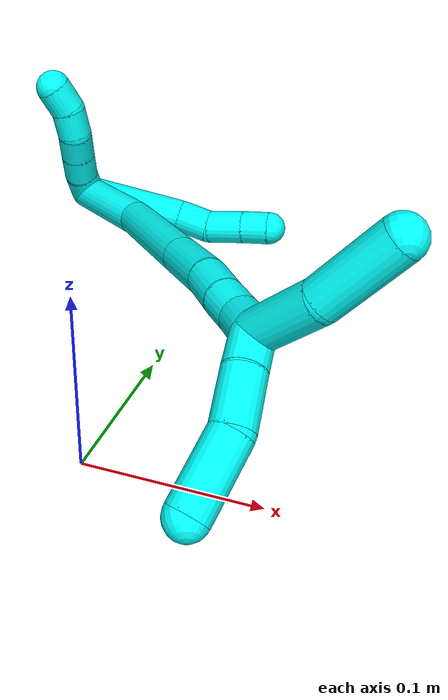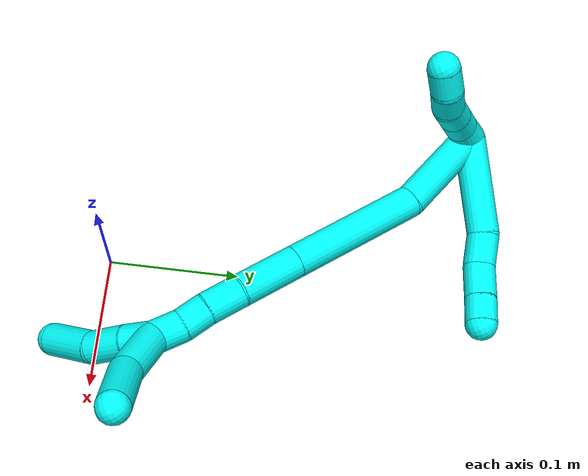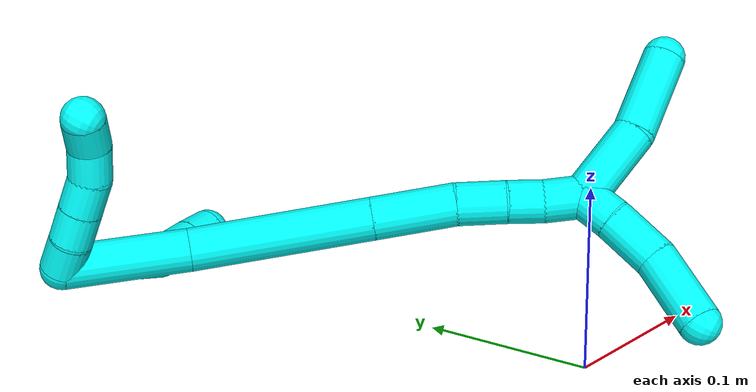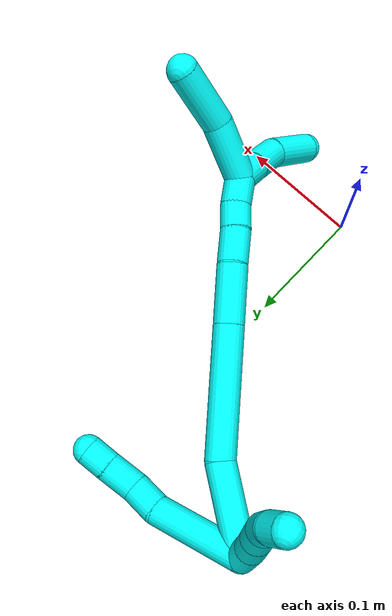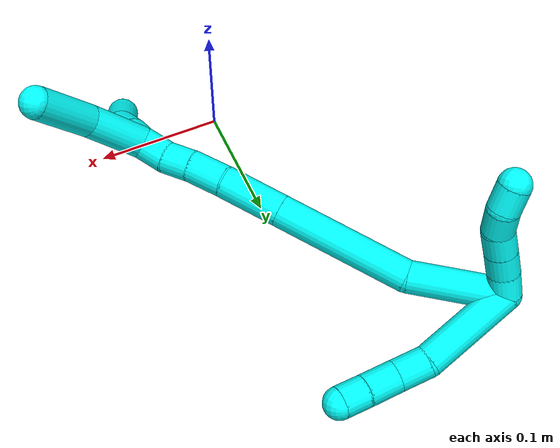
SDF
<sdf version="1.7">
 <world name="default">
  <model name="3">
   <static>0</static>
   <link name="3">
    <collision name="collision-cylinder-e_1_2_8">
     <pose>0.03267 0.018188 -0.007579 -1.96563 1.02808 -1.40556</pose>
     <geometry><cylinder><radius>0.0125</radius><length>0.076305</length></cylinder></geometry>
     <surface>
      <friction><ode><mu>1.16</mu><mu2>1.16</mu2><slip1>0</slip1><slip2>0</slip2></ode></friction>
      <contact><ode><kp>1e+06</kp><kd>1</kd><max_vel>0</max_vel><min_depth>0.001</min_depth></ode></contact>
     </surface>
    </collision>
    <visual name="visual-cylinder-e_1_2_8">
     <pose>0.03267 0.018188 -0.007579 -1.96563 1.02808 -1.40556</pose>
     <geometry><cylinder><radius>0.0125</radius><length>0.076305</length></cylinder></geometry>
     <material><ambient>0.003922 1 0.996078 1</ambient></material>
    </visual>
    <collision name="collision-cylinder-e_2_8_9">
     <pose>0.076108 0.040582 -0.020627 -2.48602 1.00099 -2.02909</pose>
     <geometry><cylinder><radius>0.0125</radius><length>0.025576</length></cylinder></geometry>
     <surface>
      <friction><ode><mu>1.16</mu><mu2>1.16</mu2><slip1>0</slip1><slip2>0</slip2></ode></friction>
      <contact><ode><kp>1e+06</kp><kd>1</kd><max_vel>0</max_vel><min_depth>0.001</min_depth></ode></contact>
     </surface>
    </collision>
    <visual name="visual-cylinder-e_2_8_9">
     <pose>0.076108 0.040582 -0.020627 -2.48602 1.00099 -2.02909</pose>
     <geometry><cylinder><radius>0.0125</radius><length>0.025576</length></cylinder></geometry>
     <material><ambient>0.003922 1 0.996078 1</ambient></material>
    </visual>
    <collision name="collision-cylinder-e_3_9_10">
     <pose>0.10026 0.046571 -0.028672 -2.53621 1.34086 -2.39125</pose>
     <geometry><cylinder><radius>0.0125</radius><length>0.027491</length></cylinder></geometry>
     <surface>
      <friction><ode><mu>1.16</mu><mu2>1.16</mu2><slip1>0</slip1><slip2>0</slip2></ode></friction>
      <contact><ode><kp>1e+06</kp><kd>1</kd><max_vel>0</max_vel><min_depth>0.001</min_depth></ode></contact>
     </surface>
    </collision>
    <visual name="visual-cylinder-e_3_9_10">
     <pose>0.10026 0.046571 -0.028672 -2.53621 1.34086 -2.39125</pose>
     <geometry><cylinder><radius>0.0125</radius><length>0.027491</length></cylinder></geometry>
     <material><ambient>0.003922 1 0.996078 1</ambient></material>
    </visual>
    <collision name="collision-cylinder-e_4_10_6">
     <pose>0.1236 0.049793 -0.033524 -2.57752 1.30658 -2.4178</pose>
     <geometry><cylinder><radius>0.0125</radius><length>0.020627</length></cylinder></geometry>
     <surface>
      <friction><ode><mu>1.16</mu><mu2>1.16</mu2><slip1>0</slip1><slip2>0</slip2></ode></friction>
      <contact><ode><kp>1e+06</kp><kd>1</kd><max_vel>0</max_vel><min_depth>0.001</min_depth></ode></contact>
     </surface>
    </collision>
    <visual name="visual-cylinder-e_4_10_6">
     <pose>0.1236 0.049793 -0.033524 -2.57752 1.30658 -2.4178</pose>
     <geometry><cylinder><radius>0.0125</radius><length>0.020627</length></cylinder></geometry>
     <material><ambient>0.003922 1 0.996078 1</ambient></material>
    </visual>
    <collision name="collision-cylinder-e_1_2_11">
     <pose>0.001586 -0.009873 9.8e-05 1.56086 0.159252 0.157683</pose>
     <geometry><cylinder><radius>0.0125</radius><length>0.02</length></cylinder></geometry>
     <surface>
      <friction><ode><mu>1.16</mu><mu2>1.16</mu2><slip1>0</slip1><slip2>0</slip2></ode></friction>
      <contact><ode><kp>1e+06</kp><kd>1</kd><max_vel>0</max_vel><min_depth>0.001</min_depth></ode></contact>
     </surface>
    </collision>
    <visual name="visual-cylinder-e_1_2_11">
     <pose>0.001586 -0.009873 9.8e-05 1.56086 0.159252 0.157683</pose>
     <geometry><cylinder><radius>0.0125</radius><length>0.02</length></cylinder></geometry>
     <material><ambient>0.003922 1 0.996078 1</ambient></material>
    </visual>
    <collision name="collision-cylinder-e_2_11_12">
     <pose>0.006026 -0.029303 0.00091 1.49622 0.289463 0.268902</pose>
     <geometry><cylinder><radius>0.0125</radius><length>0.02</length></cylinder></geometry>
     <surface>
      <friction><ode><mu>1.16</mu><mu2>1.16</mu2><slip1>0</slip1><slip2>0</slip2></ode></friction>
      <contact><ode><kp>1e+06</kp><kd>1</kd><max_vel>0</max_vel><min_depth>0.001</min_depth></ode></contact>
     </surface>
    </collision>
    <visual name="visual-cylinder-e_2_11_12">
     <pose>0.006026 -0.029303 0.00091 1.49622 0.289463 0.268902</pose>
     <geometry><cylinder><radius>0.0125</radius><length>0.02</length></cylinder></geometry>
     <material><ambient>0.003922 1 0.996078 1</ambient></material>
    </visual>
    <collision name="collision-cylinder-e_3_12_13">
     <pose>0.011883 -0.04837 0.002375 1.49205 0.304924 0.28213</pose>
     <geometry><cylinder><radius>0.0125</radius><length>0.02</length></cylinder></geometry>
     <surface>
      <friction><ode><mu>1.16</mu><mu2>1.16</mu2><slip1>0</slip1><slip2>0</slip2></ode></friction>
      <contact><ode><kp>1e+06</kp><kd>1</kd><max_vel>0</max_vel><min_depth>0.001</min_depth></ode></contact>
     </surface>
    </collision>
    <visual name="visual-cylinder-e_3_12_13">
     <pose>0.011883 -0.04837 0.002375 1.49205 0.304924 0.28213</pose>
     <geometry><cylinder><radius>0.0125</radius><length>0.02</length></cylinder></geometry>
     <material><ambient>0.003922 1 0.996078 1</ambient></material>
    </visual>
    <collision name="collision-cylinder-e_4_13_14">
     <pose>0.016248 -0.067248 0.006343 1.24001 0.136766 0.097714</pose>
     <geometry><cylinder><radius>0.0125</radius><length>0.02</length></cylinder></geometry>
     <surface>
      <friction><ode><mu>1.16</mu><mu2>1.16</mu2><slip1>0</slip1><slip2>0</slip2></ode></friction>
      <contact><ode><kp>1e+06</kp><kd>1</kd><max_vel>0</max_vel><min_depth>0.001</min_depth></ode></contact>
     </surface>
    </collision>
    <visual name="visual-cylinder-e_4_13_14">
     <pose>0.016248 -0.067248 0.006343 1.24001 0.136766 0.097714</pose>
     <geometry><cylinder><radius>0.0125</radius><length>0.02</length></cylinder></geometry>
     <material><ambient>0.003922 1 0.996078 1</ambient></material>
    </visual>
    <collision name="collision-cylinder-e_5_14_5">
     <pose>0.015766 -0.08601 0.012457 1.27162 -0.185608 -0.137167</pose>
     <geometry><cylinder><radius>0.0125</radius><length>0.02</length></cylinder></geometry>
     <surface>
      <friction><ode><mu>1.16</mu><mu2>1.16</mu2><slip1>0</slip1><slip2>0</slip2></ode></friction>
      <contact><ode><kp>1e+06</kp><kd>1</kd><max_vel>0</max_vel><min_depth>0.001</min_depth></ode></contact>
     </surface>
    </collision>
    <visual name="visual-cylinder-e_5_14_5">
     <pose>0.015766 -0.08601 0.012457 1.27162 -0.185608 -0.137167</pose>
     <geometry><cylinder><radius>0.0125</radius><length>0.02</length></cylinder></geometry>
     <material><ambient>0.003922 1 0.996078 1</ambient></material>
    </visual>
    <collision name="collision-cylinder-e_1_2_15">
     <pose>0.024187 -0.006352 -0.026642 2.90755 0.72341 2.53909</pose>
     <geometry><cylinder><radius>0.0125</radius><length>0.073079</length></cylinder></geometry>
     <surface>
      <friction><ode><mu>1.16</mu><mu2>1.16</mu2><slip1>0</slip1><slip2>0</slip2></ode></friction>
      <contact><ode><kp>1e+06</kp><kd>1</kd><max_vel>0</max_vel><min_depth>0.001</min_depth></ode></contact>
     </surface>
    </collision>
    <visual name="visual-cylinder-e_1_2_15">
     <pose>0.024187 -0.006352 -0.026642 2.90755 0.72341 2.53909</pose>
     <geometry><cylinder><radius>0.0125</radius><length>0.073079</length></cylinder></geometry>
     <material><ambient>0.003922 1 0.996078 1</ambient></material>
    </visual>
    <collision name="collision-cylinder-e_2_15_16">
     <pose>0.0737 -0.034369 -0.094598 2.65861 0.497368 1.60135</pose>
     <geometry><cylinder><radius>0.0125</radius><length>0.106163</length></cylinder></geometry>
     <surface>
      <friction><ode><mu>1.16</mu><mu2>1.16</mu2><slip1>0</slip1><slip2>0</slip2></ode></friction>
      <contact><ode><kp>1e+06</kp><kd>1</kd><max_vel>0</max_vel><min_depth>0.001</min_depth></ode></contact>
     </surface>
    </collision>
    <visual name="visual-cylinder-e_2_15_16">
     <pose>0.0737 -0.034369 -0.094598 2.65861 0.497368 1.60135</pose>
     <geometry><cylinder><radius>0.0125</radius><length>0.106163</length></cylinder></geometry>
     <material><ambient>0.003922 1 0.996078 1</ambient></material>
    </visual>
    <collision name="collision-cylinder-e_3_16_17">
     <pose>0.110521 -0.065861 -0.154579 2.65705 0.498896 1.60119</pose>
     <geometry><cylinder><radius>0.0125</radius><length>0.048048</length></cylinder></geometry>
     <surface>
      <friction><ode><mu>1.16</mu><mu2>1.16</mu2><slip1>0</slip1><slip2>0</slip2></ode></friction>
      <contact><ode><kp>1e+06</kp><kd>1</kd><max_vel>0</max_vel><min_depth>0.001</min_depth></ode></contact>
     </surface>
    </collision>
    <visual name="visual-cylinder-e_3_16_17">
     <pose>0.110521 -0.065861 -0.154579 2.65705 0.498896 1.60119</pose>
     <geometry><cylinder><radius>0.0125</radius><length>0.048048</length></cylinder></geometry>
     <material><ambient>0.003922 1 0.996078 1</ambient></material>
    </visual>
    <collision name="collision-cylinder-e_4_17_18">
     <pose>0.127995 -0.080283 -0.185315 2.77771 0.433628 1.7499</pose>
     <geometry><cylinder><radius>0.0125</radius><length>0.028462</length></cylinder></geometry>
     <surface>
      <friction><ode><mu>1.16</mu><mu2>1.16</mu2><slip1>0</slip1><slip2>0</slip2></ode></friction>
      <contact><ode><kp>1e+06</kp><kd>1</kd><max_vel>0</max_vel><min_depth>0.001</min_depth></ode></contact>
     </surface>
    </collision>
    <visual name="visual-cylinder-e_4_17_18">
     <pose>0.127995 -0.080283 -0.185315 2.77771 0.433628 1.7499</pose>
     <geometry><cylinder><radius>0.0125</radius><length>0.028462</length></cylinder></geometry>
     <material><ambient>0.003922 1 0.996078 1</ambient></material>
    </visual>
    <collision name="collision-cylinder-e_5_18_19">
     <pose>0.139079 -0.087397 -0.206426 2.87004 0.498088 2.15571</pose>
     <geometry><cylinder><radius>0.0125</radius><length>0.021369</length></cylinder></geometry>
     <surface>
      <friction><ode><mu>1.16</mu><mu2>1.16</mu2><slip1>0</slip1><slip2>0</slip2></ode></friction>
      <contact><ode><kp>1e+06</kp><kd>1</kd><max_vel>0</max_vel><min_depth>0.001</min_depth></ode></contact>
     </surface>
    </collision>
    <visual name="visual-cylinder-e_5_18_19">
     <pose>0.139079 -0.087397 -0.206426 2.87004 0.498088 2.15571</pose>
     <geometry><cylinder><radius>0.0125</radius><length>0.021369</length></cylinder></geometry>
     <material><ambient>0.003922 1 0.996078 1</ambient></material>
    </visual>
    <collision name="collision-cylinder-e_6_19_1">
     <pose>0.148615 -0.094804 -0.224812 2.65951 0.397846 1.37371</pose>
     <geometry><cylinder><radius>0.0125</radius><length>0.022878</length></cylinder></geometry>
     <surface>
      <friction><ode><mu>1.16</mu><mu2>1.16</mu2><slip1>0</slip1><slip2>0</slip2></ode></friction>
      <contact><ode><kp>1e+06</kp><kd>1</kd><max_vel>0</max_vel><min_depth>0.001</min_depth></ode></contact>
     </surface>
    </collision>
    <visual name="visual-cylinder-e_6_19_1">
     <pose>0.148615 -0.094804 -0.224812 2.65951 0.397846 1.37371</pose>
     <geometry><cylinder><radius>0.0125</radius><length>0.022878</length></cylinder></geometry>
     <material><ambient>0.003922 1 0.996078 1</ambient></material>
    </visual>
    <collision name="collision-cylinder-e_1_1_20">
     <pose>0.173311 -0.112872 -0.23778 1.83916 0.977392 1.21833</pose>
     <geometry><cylinder><radius>0.0125</radius><length>0.048886</length></cylinder></geometry>
     <surface>
      <friction><ode><mu>1.16</mu><mu2>1.16</mu2><slip1>0</slip1><slip2>0</slip2></ode></friction>
      <contact><ode><kp>1e+06</kp><kd>1</kd><max_vel>0</max_vel><min_depth>0.001</min_depth></ode></contact>
     </surface>
    </collision>
    <visual name="visual-cylinder-e_1_1_20">
     <pose>0.173311 -0.112872 -0.23778 1.83916 0.977392 1.21833</pose>
     <geometry><cylinder><radius>0.0125</radius><length>0.048886</length></cylinder></geometry>
     <material><ambient>0.003922 1 0.996078 1</ambient></material>
    </visual>
    <collision name="collision-cylinder-e_2_20_4">
     <pose>0.215406 -0.139002 -0.238428 1.34492 1.024 0.841532</pose>
     <geometry><cylinder><radius>0.0125</radius><length>0.051114</length></cylinder></geometry>
     <surface>
      <friction><ode><mu>1.16</mu><mu2>1.16</mu2><slip1>0</slip1><slip2>0</slip2></ode></friction>
      <contact><ode><kp>1e+06</kp><kd>1</kd><max_vel>0</max_vel><min_depth>0.001</min_depth></ode></contact>
     </surface>
    </collision>
    <visual name="visual-cylinder-e_2_20_4">
     <pose>0.215406 -0.139002 -0.238428 1.34492 1.024 0.841532</pose>
     <geometry><cylinder><radius>0.0125</radius><length>0.051114</length></cylinder></geometry>
     <material><ambient>0.003922 1 0.996078 1</ambient></material>
    </visual>
    <collision name="collision-cylinder-e_1_1_21">
     <pose>0.150217 -0.099797 -0.244779 3.1318 -0.260326 -3.06682</pose>
     <geometry><cylinder><radius>0.0125</radius><length>0.021989</length></cylinder></geometry>
     <surface>
      <friction><ode><mu>1.16</mu><mu2>1.16</mu2><slip1>0</slip1><slip2>0</slip2></ode></friction>
      <contact><ode><kp>1e+06</kp><kd>1</kd><max_vel>0</max_vel><min_depth>0.001</min_depth></ode></contact>
     </surface>
    </collision>
    <visual name="visual-cylinder-e_1_1_21">
     <pose>0.150217 -0.099797 -0.244779 3.1318 -0.260326 -3.06682</pose>
     <geometry><cylinder><radius>0.0125</radius><length>0.021989</length></cylinder></geometry>
     <material><ambient>0.003922 1 0.996078 1</ambient></material>
    </visual>
    <collision name="collision-cylinder-e_2_21_22">
     <pose>0.143029 -0.098368 -0.27105 -3.04392 -0.270424 2.45176</pose>
     <geometry><cylinder><radius>0.0125</radius><length>0.032631</length></cylinder></geometry>
     <surface>
      <friction><ode><mu>1.16</mu><mu2>1.16</mu2><slip1>0</slip1><slip2>0</slip2></ode></friction>
      <contact><ode><kp>1e+06</kp><kd>1</kd><max_vel>0</max_vel><min_depth>0.001</min_depth></ode></contact>
     </surface>
    </collision>
    <visual name="visual-cylinder-e_2_21_22">
     <pose>0.143029 -0.098368 -0.27105 -3.04392 -0.270424 2.45176</pose>
     <geometry><cylinder><radius>0.0125</radius><length>0.032631</length></cylinder></geometry>
     <material><ambient>0.003922 1 0.996078 1</ambient></material>
    </visual>
    <collision name="collision-cylinder-e_3_22_3">
     <pose>0.126115 -0.094545 -0.305459 -3.02013 -0.586355 2.74406</pose>
     <geometry><cylinder><radius>0.0125</radius><length>0.04538</length></cylinder></geometry>
     <surface>
      <friction><ode><mu>1.16</mu><mu2>1.16</mu2><slip1>0</slip1><slip2>0</slip2></ode></friction>
      <contact><ode><kp>1e+06</kp><kd>1</kd><max_vel>0</max_vel><min_depth>0.001</min_depth></ode></contact>
     </surface>
    </collision>
    <visual name="visual-cylinder-e_3_22_3">
     <pose>0.126115 -0.094545 -0.305459 -3.02013 -0.586355 2.74406</pose>
     <geometry><cylinder><radius>0.0125</radius><length>0.04538</length></cylinder></geometry>
     <material><ambient>0.003922 1 0.996078 1</ambient></material>
    </visual>
    <collision name="collision-sphere-3">
     <pose>0.11356 -0.092255 -0.324219 0 -0 0</pose>
     <geometry><sphere><radius>0.0125</radius></sphere></geometry>
     <surface>
      <friction><ode><mu>1.16</mu><mu2>1.16</mu2><slip1>0</slip1><slip2>0</slip2></ode></friction>
      <contact><ode><kp>1e+06</kp><kd>1</kd><max_vel>0</max_vel><min_depth>0.001</min_depth></ode></contact>
     </surface>
    </collision>
    <visual name="visual-sphere-3">
     <pose>0.11356 -0.092255 -0.324219 0 -0 0</pose>
     <geometry><sphere><radius>0.0125</radius></sphere></geometry>
     <material><ambient>0.003922 1 0.996078 1</ambient></material>
    </visual>
    <collision name="collision-sphere-22">
     <pose>0.13867 -0.096835 -0.286698 0 -0 0</pose>
     <geometry><sphere><radius>0.0125</radius></sphere></geometry>
     <surface>
      <friction><ode><mu>1.16</mu><mu2>1.16</mu2><slip1>0</slip1><slip2>0</slip2></ode></friction>
      <contact><ode><kp>1e+06</kp><kd>1</kd><max_vel>0</max_vel><min_depth>0.001</min_depth></ode></contact>
     </surface>
    </collision>
    <visual name="visual-sphere-22">
     <pose>0.13867 -0.096835 -0.286698 0 -0 0</pose>
     <geometry><sphere><radius>0.0125</radius></sphere></geometry>
     <material><ambient>0.003922 1 0.996078 1</ambient></material>
    </visual>
    <collision name="collision-sphere-21">
     <pose>0.147387 -0.099901 -0.255403 0 -0 0</pose>
     <geometry><sphere><radius>0.0125</radius></sphere></geometry>
     <surface>
      <friction><ode><mu>1.16</mu><mu2>1.16</mu2><slip1>0</slip1><slip2>0</slip2></ode></friction>
      <contact><ode><kp>1e+06</kp><kd>1</kd><max_vel>0</max_vel><min_depth>0.001</min_depth></ode></contact>
     </surface>
    </collision>
    <visual name="visual-sphere-21">
     <pose>0.147387 -0.099901 -0.255403 0 -0 0</pose>
     <geometry><sphere><radius>0.0125</radius></sphere></geometry>
     <material><ambient>0.003922 1 0.996078 1</ambient></material>
    </visual>
    <collision name="collision-sphere-4">
     <pose>0.237237 -0.151953 -0.235452 0 -0 0</pose>
     <geometry><sphere><radius>0.0125</radius></sphere></geometry>
     <surface>
      <friction><ode><mu>1.16</mu><mu2>1.16</mu2><slip1>0</slip1><slip2>0</slip2></ode></friction>
      <contact><ode><kp>1e+06</kp><kd>1</kd><max_vel>0</max_vel><min_depth>0.001</min_depth></ode></contact>
     </surface>
    </collision>
    <visual name="visual-sphere-4">
     <pose>0.237237 -0.151953 -0.235452 0 -0 0</pose>
     <geometry><sphere><radius>0.0125</radius></sphere></geometry>
     <material><ambient>0.003922 1 0.996078 1</ambient></material>
    </visual>
    <collision name="collision-sphere-20">
     <pose>0.193575 -0.126051 -0.241404 0 -0 0</pose>
     <geometry><sphere><radius>0.0125</radius></sphere></geometry>
     <surface>
      <friction><ode><mu>1.16</mu><mu2>1.16</mu2><slip1>0</slip1><slip2>0</slip2></ode></friction>
      <contact><ode><kp>1e+06</kp><kd>1</kd><max_vel>0</max_vel><min_depth>0.001</min_depth></ode></contact>
     </surface>
    </collision>
    <visual name="visual-sphere-20">
     <pose>0.193575 -0.126051 -0.241404 0 -0 0</pose>
     <geometry><sphere><radius>0.0125</radius></sphere></geometry>
     <material><ambient>0.003922 1 0.996078 1</ambient></material>
    </visual>
    <collision name="collision-sphere-11">
     <pose>0.003172 -0.019746 0.000196 0 -0 0</pose>
     <geometry><sphere><radius>0.0125</radius></sphere></geometry>
     <surface>
      <friction><ode><mu>1.16</mu><mu2>1.16</mu2><slip1>0</slip1><slip2>0</slip2></ode></friction>
      <contact><ode><kp>1e+06</kp><kd>1</kd><max_vel>0</max_vel><min_depth>0.001</min_depth></ode></contact>
     </surface>
    </collision>
    <visual name="visual-sphere-11">
     <pose>0.003172 -0.019746 0.000196 0 -0 0</pose>
     <geometry><sphere><radius>0.0125</radius></sphere></geometry>
     <material><ambient>0.003922 1 0.996078 1</ambient></material>
    </visual>
    <collision name="collision-sphere-6">
     <pose>0.133556 0.051233 -0.0358 0 -0 0</pose>
     <geometry><sphere><radius>0.0125</radius></sphere></geometry>
     <surface>
      <friction><ode><mu>1.16</mu><mu2>1.16</mu2><slip1>0</slip1><slip2>0</slip2></ode></friction>
      <contact><ode><kp>1e+06</kp><kd>1</kd><max_vel>0</max_vel><min_depth>0.001</min_depth></ode></contact>
     </surface>
    </collision>
    <visual name="visual-sphere-6">
     <pose>0.133556 0.051233 -0.0358 0 -0 0</pose>
     <geometry><sphere><radius>0.0125</radius></sphere></geometry>
     <material><ambient>0.003922 1 0.996078 1</ambient></material>
    </visual>
    <collision name="collision-sphere-10">
     <pose>0.113644 0.048353 -0.031248 0 -0 0</pose>
     <geometry><sphere><radius>0.0125</radius></sphere></geometry>
     <surface>
      <friction><ode><mu>1.16</mu><mu2>1.16</mu2><slip1>0</slip1><slip2>0</slip2></ode></friction>
      <contact><ode><kp>1e+06</kp><kd>1</kd><max_vel>0</max_vel><min_depth>0.001</min_depth></ode></contact>
     </surface>
    </collision>
    <visual name="visual-sphere-10">
     <pose>0.113644 0.048353 -0.031248 0 -0 0</pose>
     <geometry><sphere><radius>0.0125</radius></sphere></geometry>
     <material><ambient>0.003922 1 0.996078 1</ambient></material>
    </visual>
    <collision name="collision-sphere-9">
     <pose>0.086876 0.044788 -0.026096 0 -0 0</pose>
     <geometry><sphere><radius>0.0125</radius></sphere></geometry>
     <surface>
      <friction><ode><mu>1.16</mu><mu2>1.16</mu2><slip1>0</slip1><slip2>0</slip2></ode></friction>
      <contact><ode><kp>1e+06</kp><kd>1</kd><max_vel>0</max_vel><min_depth>0.001</min_depth></ode></contact>
     </surface>
    </collision>
    <visual name="visual-sphere-9">
     <pose>0.086876 0.044788 -0.026096 0 -0 0</pose>
     <geometry><sphere><radius>0.0125</radius></sphere></geometry>
     <material><ambient>0.003922 1 0.996078 1</ambient></material>
    </visual>
    <collision name="collision-sphere-2">
     <geometry><sphere><radius>0.0125</radius></sphere></geometry>
     <surface>
      <friction><ode><mu>1.16</mu><mu2>1.16</mu2><slip1>0</slip1><slip2>0</slip2></ode></friction>
      <contact><ode><kp>1e+06</kp><kd>1</kd><max_vel>0</max_vel><min_depth>0.001</min_depth></ode></contact>
     </surface>
    </collision>
    <visual name="visual-sphere-2">
     <geometry><sphere><radius>0.0125</radius></sphere></geometry>
     <material><ambient>0.003922 1 0.996078 1</ambient></material>
    </visual>
    <collision name="collision-sphere-19">
     <pose>0.144183 -0.089915 -0.215468 0 -0 0</pose>
     <geometry><sphere><radius>0.0125</radius></sphere></geometry>
     <surface>
      <friction><ode><mu>1.16</mu><mu2>1.16</mu2><slip1>0</slip1><slip2>0</slip2></ode></friction>
      <contact><ode><kp>1e+06</kp><kd>1</kd><max_vel>0</max_vel><min_depth>0.001</min_depth></ode></contact>
     </surface>
    </collision>
    <visual name="visual-sphere-19">
     <pose>0.144183 -0.089915 -0.215468 0 -0 0</pose>
     <geometry><sphere><radius>0.0125</radius></sphere></geometry>
     <material><ambient>0.003922 1 0.996078 1</ambient></material>
    </visual>
    <collision name="collision-sphere-8">
     <pose>0.065341 0.036376 -0.015159 0 -0 0</pose>
     <geometry><sphere><radius>0.0125</radius></sphere></geometry>
     <surface>
      <friction><ode><mu>1.16</mu><mu2>1.16</mu2><slip1>0</slip1><slip2>0</slip2></ode></friction>
      <contact><ode><kp>1e+06</kp><kd>1</kd><max_vel>0</max_vel><min_depth>0.001</min_depth></ode></contact>
     </surface>
    </collision>
    <visual name="visual-sphere-8">
     <pose>0.065341 0.036376 -0.015159 0 -0 0</pose>
     <geometry><sphere><radius>0.0125</radius></sphere></geometry>
     <material><ambient>0.003922 1 0.996078 1</ambient></material>
    </visual>
    <collision name="collision-sphere-12">
     <pose>0.00888 -0.038861 0.001624 0 -0 0</pose>
     <geometry><sphere><radius>0.0125</radius></sphere></geometry>
     <surface>
      <friction><ode><mu>1.16</mu><mu2>1.16</mu2><slip1>0</slip1><slip2>0</slip2></ode></friction>
      <contact><ode><kp>1e+06</kp><kd>1</kd><max_vel>0</max_vel><min_depth>0.001</min_depth></ode></contact>
     </surface>
    </collision>
    <visual name="visual-sphere-12">
     <pose>0.00888 -0.038861 0.001624 0 -0 0</pose>
     <geometry><sphere><radius>0.0125</radius></sphere></geometry>
     <material><ambient>0.003922 1 0.996078 1</ambient></material>
    </visual>
    <collision name="collision-sphere-13">
     <pose>0.014885 -0.057879 0.003125 0 -0 0</pose>
     <geometry><sphere><radius>0.0125</radius></sphere></geometry>
     <surface>
      <friction><ode><mu>1.16</mu><mu2>1.16</mu2><slip1>0</slip1><slip2>0</slip2></ode></friction>
      <contact><ode><kp>1e+06</kp><kd>1</kd><max_vel>0</max_vel><min_depth>0.001</min_depth></ode></contact>
     </surface>
    </collision>
    <visual name="visual-sphere-13">
     <pose>0.014885 -0.057879 0.003125 0 -0 0</pose>
     <geometry><sphere><radius>0.0125</radius></sphere></geometry>
     <material><ambient>0.003922 1 0.996078 1</ambient></material>
    </visual>
    <collision name="collision-sphere-14">
     <pose>0.017612 -0.076618 0.00956 0 -0 0</pose>
     <geometry><sphere><radius>0.0125</radius></sphere></geometry>
     <surface>
      <friction><ode><mu>1.16</mu><mu2>1.16</mu2><slip1>0</slip1><slip2>0</slip2></ode></friction>
      <contact><ode><kp>1e+06</kp><kd>1</kd><max_vel>0</max_vel><min_depth>0.001</min_depth></ode></contact>
     </surface>
    </collision>
    <visual name="visual-sphere-14">
     <pose>0.017612 -0.076618 0.00956 0 -0 0</pose>
     <geometry><sphere><radius>0.0125</radius></sphere></geometry>
     <material><ambient>0.003922 1 0.996078 1</ambient></material>
    </visual>
    <collision name="collision-sphere-5">
     <pose>0.013921 -0.095401 0.015354 0 -0 0</pose>
     <geometry><sphere><radius>0.0125</radius></sphere></geometry>
     <surface>
      <friction><ode><mu>1.16</mu><mu2>1.16</mu2><slip1>0</slip1><slip2>0</slip2></ode></friction>
      <contact><ode><kp>1e+06</kp><kd>1</kd><max_vel>0</max_vel><min_depth>0.001</min_depth></ode></contact>
     </surface>
    </collision>
    <visual name="visual-sphere-5">
     <pose>0.013921 -0.095401 0.015354 0 -0 0</pose>
     <geometry><sphere><radius>0.0125</radius></sphere></geometry>
     <material><ambient>0.003922 1 0.996078 1</ambient></material>
    </visual>
    <collision name="collision-sphere-15">
     <pose>0.048374 -0.012703 -0.053283 0 -0 0</pose>
     <geometry><sphere><radius>0.0125</radius></sphere></geometry>
     <surface>
      <friction><ode><mu>1.16</mu><mu2>1.16</mu2><slip1>0</slip1><slip2>0</slip2></ode></friction>
      <contact><ode><kp>1e+06</kp><kd>1</kd><max_vel>0</max_vel><min_depth>0.001</min_depth></ode></contact>
     </surface>
    </collision>
    <visual name="visual-sphere-15">
     <pose>0.048374 -0.012703 -0.053283 0 -0 0</pose>
     <geometry><sphere><radius>0.0125</radius></sphere></geometry>
     <material><ambient>0.003922 1 0.996078 1</ambient></material>
    </visual>
    <collision name="collision-sphere-16">
     <pose>0.099027 -0.056034 -0.135912 0 -0 0</pose>
     <geometry><sphere><radius>0.0125</radius></sphere></geometry>
     <surface>
      <friction><ode><mu>1.16</mu><mu2>1.16</mu2><slip1>0</slip1><slip2>0</slip2></ode></friction>
      <contact><ode><kp>1e+06</kp><kd>1</kd><max_vel>0</max_vel><min_depth>0.001</min_depth></ode></contact>
     </surface>
    </collision>
    <visual name="visual-sphere-16">
     <pose>0.099027 -0.056034 -0.135912 0 -0 0</pose>
     <geometry><sphere><radius>0.0125</radius></sphere></geometry>
     <material><ambient>0.003922 1 0.996078 1</ambient></material>
    </visual>
    <collision name="collision-sphere-17">
     <pose>0.122015 -0.075687 -0.173247 0 -0 0</pose>
     <geometry><sphere><radius>0.0125</radius></sphere></geometry>
     <surface>
      <friction><ode><mu>1.16</mu><mu2>1.16</mu2><slip1>0</slip1><slip2>0</slip2></ode></friction>
      <contact><ode><kp>1e+06</kp><kd>1</kd><max_vel>0</max_vel><min_depth>0.001</min_depth></ode></contact>
     </surface>
    </collision>
    <visual name="visual-sphere-17">
     <pose>0.122015 -0.075687 -0.173247 0 -0 0</pose>
     <geometry><sphere><radius>0.0125</radius></sphere></geometry>
     <material><ambient>0.003922 1 0.996078 1</ambient></material>
    </visual>
    <collision name="collision-sphere-18">
     <pose>0.133974 -0.084879 -0.197383 0 -0 0</pose>
     <geometry><sphere><radius>0.0125</radius></sphere></geometry>
     <surface>
      <friction><ode><mu>1.16</mu><mu2>1.16</mu2><slip1>0</slip1><slip2>0</slip2></ode></friction>
      <contact><ode><kp>1e+06</kp><kd>1</kd><max_vel>0</max_vel><min_depth>0.001</min_depth></ode></contact>
     </surface>
    </collision>
    <visual name="visual-sphere-18">
     <pose>0.133974 -0.084879 -0.197383 0 -0 0</pose>
     <geometry><sphere><radius>0.0125</radius></sphere></geometry>
     <material><ambient>0.003922 1 0.996078 1</ambient></material>
    </visual>
    <collision name="collision-sphere-1">
     <pose>0.153047 -0.099693 -0.234156 0 -0 0</pose>
     <geometry><sphere><radius>0.0125</radius></sphere></geometry>
     <surface>
      <friction><ode><mu>1.16</mu><mu2>1.16</mu2><slip1>0</slip1><slip2>0</slip2></ode></friction>
      <contact><ode><kp>1e+06</kp><kd>1</kd><max_vel>0</max_vel><min_depth>0.001</min_depth></ode></contact>
     </surface>
    </collision>
    <visual name="visual-sphere-1">
     <pose>0.153047 -0.099693 -0.234156 0 -0 0</pose>
     <geometry><sphere><radius>0.0125</radius></sphere></geometry>
     <material><ambient>0.003922 1 0.996078 1</ambient></material>
    </visual>
    <inertial>
     <pose>0.091825 -0.047999 -0.117717 0 -0 0</pose>
     <mass>0.75</mass>
     <inertia>
      <ixx>0.000122</ixx>
      <ixy>0</ixy>
      <ixz>0</ixz>
      <iyy>0.000232</iyy>
      <iyz>0</iyz>
      <izz>-0.00011</izz>
     </inertia>
    </inertial>
   </link>
   <pose>-0.123562 0.266845 0.034637 -1.11424 -0.305875 0.214035</pose>
  </model>
 </world>
</sdf>
